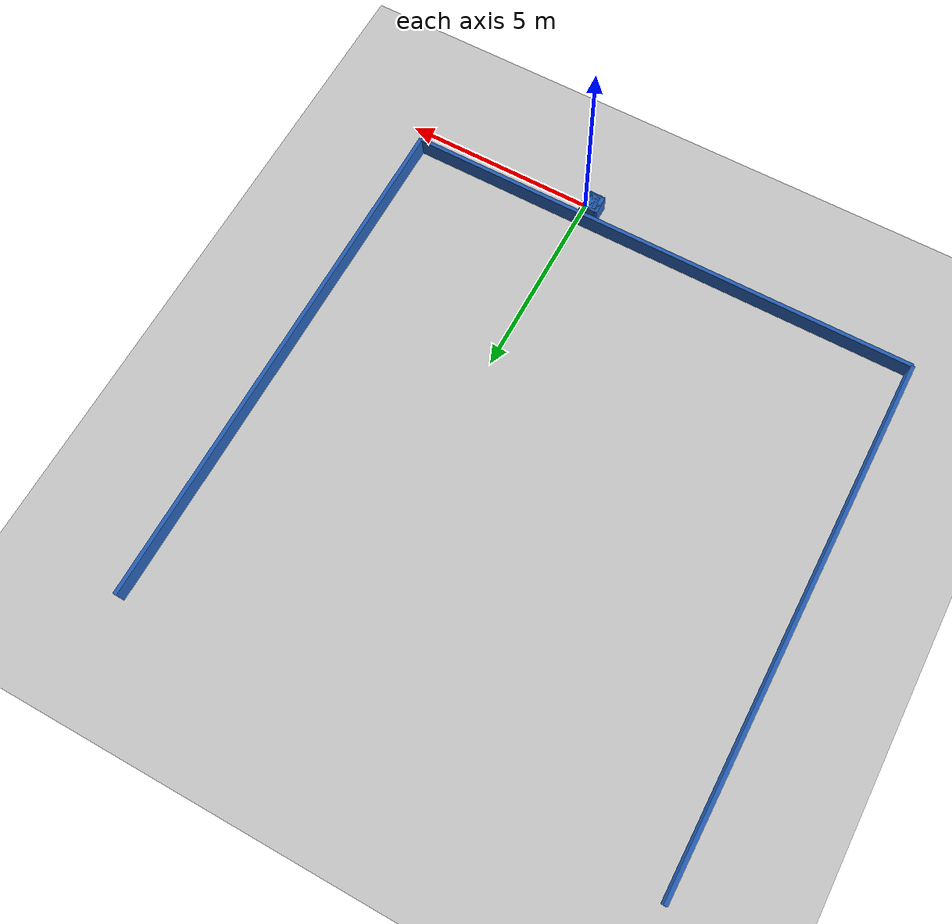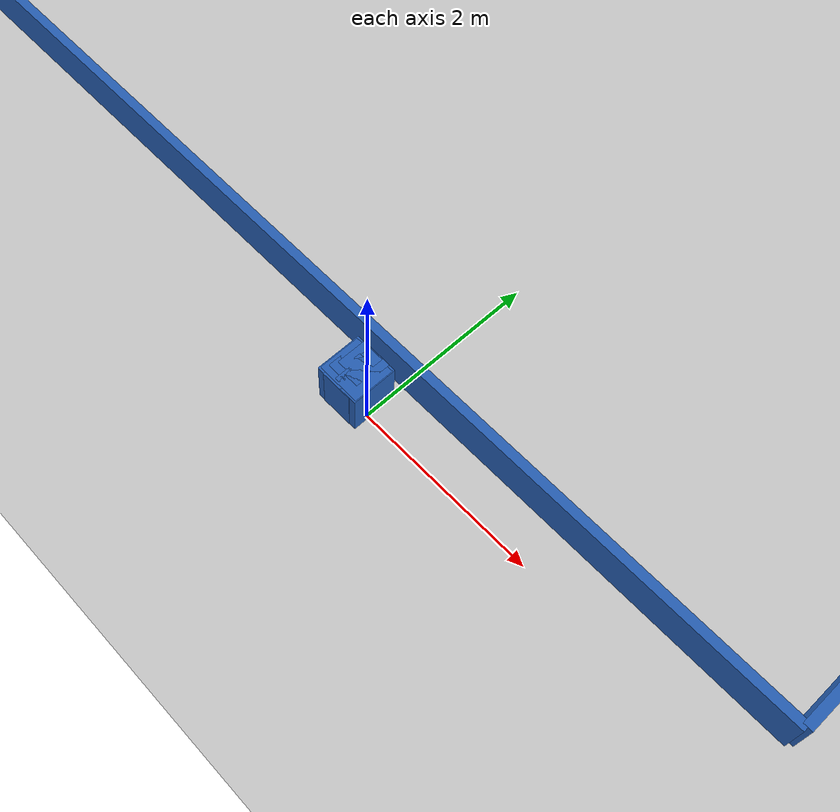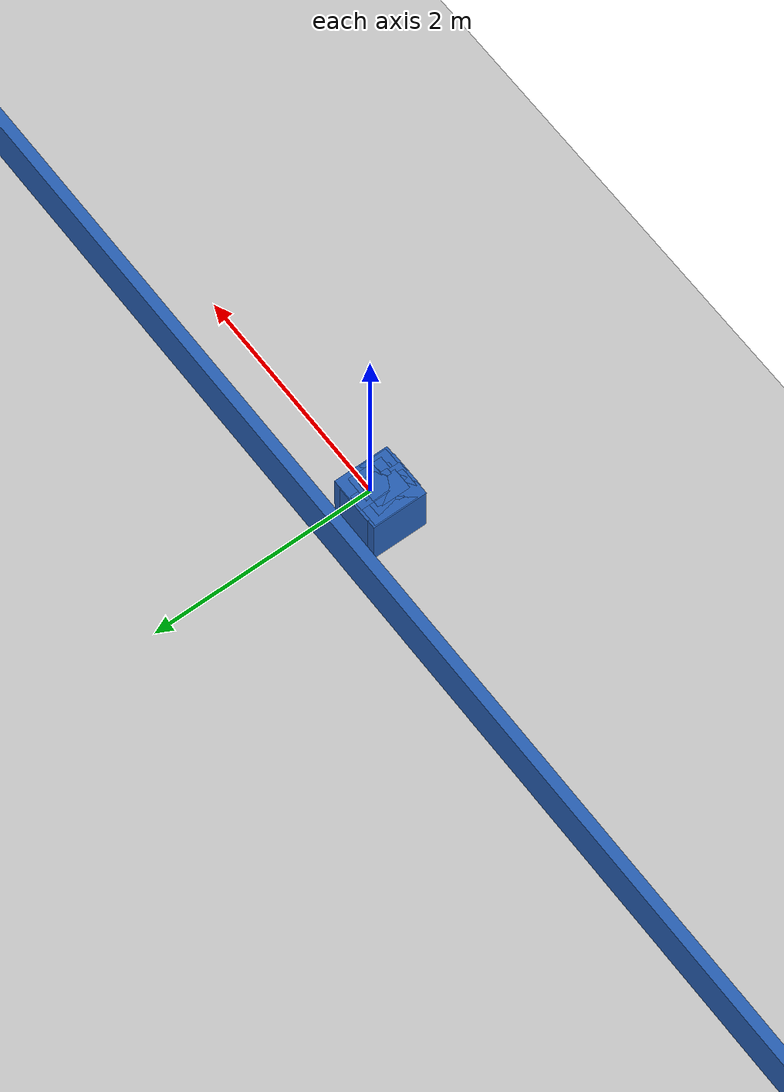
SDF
<?xml version="1.0" ?>
    <sdf version="1.5">
      <world name="default">
        <!-- A global light source -->
        <include>
          <uri>model://sun</uri>
        </include>
        <!-- A ground plane -->
        <include>
          <uri>model://ground_plane</uri>
        </include>

    <model name='libopen_space_final_T2B_96_0'>
      <static>1</static>
      <pose frame=''>-0.225000 0.075000 0.000000 0.000000 0.000000 0.000000</pose>
      <link name='link'>
        <inertial>
          <mass>1</mass>
          <inertia>
            <ixx>0.145833</ixx>
            <ixy>0</ixy>
            <ixz>0</ixz>
            <iyy>0.145833</iyy>
            <iyz>0</iyz>
            <izz>0.125</izz>
          </inertia>
        </inertial>
        <collision name='collision'>
          <geometry>
            <box>
              <size>0.20 0.27 1</size>
            </box>
          </geometry>
          <max_contacts>10</max_contacts>
          <surface>
            <contact>
              <ode/>
            </contact>
            <bounce/>
            <friction>
              <torsional>
                <ode/>
              </torsional>
              <ode/>
            </friction>
          </surface>
        </collision>
        <visual name='visual'>
          <geometry>
            <box>
              <size>0.20 0.27 1</size>
            </box>
          </geometry>
	    <material>
              <ambient>0.152000 0.379000 0.720000 1</ambient>
	      <diffuse>0.152000 0.379000 0.720000 1</diffuse>
          </material>
          <material>
            <script>
              <name>Gazebo/Grey</name>
              <uri>file://media/materials/scripts/gazebo.material</uri>
            </script>
          </material>
        </visual>
        <self_collide>0</self_collide>
        <kinematic>0</kinematic>
        <gravity>1</gravity>
      </link>
      <plugin name='libopen_space_final_T2B_96_0' filename='libopen_space_final_T2B_96_0.so'/>
    </model>

    <model name='libopen_space_final_T2B_90_7'>
      <static>1</static>
      <pose frame=''>-0.225000 0.075000 0.000000 0.000000 0.000000 0.000000</pose>
      <link name='link'>
        <inertial>
          <mass>1</mass>
          <inertia>
            <ixx>0.145833</ixx>
            <ixy>0</ixy>
            <ixz>0</ixz>
            <iyy>0.145833</iyy>
            <iyz>0</iyz>
            <izz>0.125</izz>
          </inertia>
        </inertial>
        <collision name='collision'>
          <geometry>
            <box>
              <size>0.35 0.14 1</size>
            </box>
          </geometry>
          <max_contacts>10</max_contacts>
          <surface>
            <contact>
              <ode/>
            </contact>
            <bounce/>
            <friction>
              <torsional>
                <ode/>
              </torsional>
              <ode/>
            </friction>
          </surface>
        </collision>
        <visual name='visual'>
          <geometry>
            <box>
              <size>0.35 0.14 1</size>
            </box>
          </geometry>
	    <material>
              <ambient>0.152000 0.379000 0.720000 1</ambient>
	      <diffuse>0.152000 0.379000 0.720000 1</diffuse>
          </material>
          <material>
            <script>
              <name>Gazebo/Grey</name>
              <uri>file://media/materials/scripts/gazebo.material</uri>
            </script>
          </material>
        </visual>
        <self_collide>0</self_collide>
        <kinematic>0</kinematic>
        <gravity>1</gravity>
      </link>
      <plugin name='libopen_space_final_T2B_90_7' filename='libopen_space_final_T2B_90_7.so'/>
    </model>

    <model name='libopen_space_final_T2B_141_33'>
      <static>1</static>
      <pose frame=''>-0.225000 0.075000 0.000000 0.000000 0.000000 0.000000</pose>
      <link name='link'>
        <inertial>
          <mass>1</mass>
          <inertia>
            <ixx>0.145833</ixx>
            <ixy>0</ixy>
            <ixz>0</ixz>
            <iyy>0.145833</iyy>
            <iyz>0</iyz>
            <izz>0.125</izz>
          </inertia>
        </inertial>
        <collision name='collision'>
          <geometry>
            <box>
              <size>0.26 0.23 1</size>
            </box>
          </geometry>
          <max_contacts>10</max_contacts>
          <surface>
            <contact>
              <ode/>
            </contact>
            <bounce/>
            <friction>
              <torsional>
                <ode/>
              </torsional>
              <ode/>
            </friction>
          </surface>
        </collision>
        <visual name='visual'>
          <geometry>
            <box>
              <size>0.26 0.23 1</size>
            </box>
          </geometry>
	    <material>
              <ambient>0.152000 0.379000 0.720000 1</ambient>
	      <diffuse>0.152000 0.379000 0.720000 1</diffuse>
          </material>
          <material>
            <script>
              <name>Gazebo/Grey</name>
              <uri>file://media/materials/scripts/gazebo.material</uri>
            </script>
          </material>
        </visual>
        <self_collide>0</self_collide>
        <kinematic>0</kinematic>
        <gravity>1</gravity>
      </link>
      <plugin name='libopen_space_final_T2B_141_33' filename='libopen_space_final_T2B_141_33.so'/>
    </model>

    <model name='libopen_space_final_T2B_118_50'>
      <static>1</static>
      <pose frame=''>-0.225000 0.075000 0.000000 0.000000 0.000000 0.000000</pose>
      <link name='link'>
        <inertial>
          <mass>1</mass>
          <inertia>
            <ixx>0.145833</ixx>
            <ixy>0</ixy>
            <ixz>0</ixz>
            <iyy>0.145833</iyy>
            <iyz>0</iyz>
            <izz>0.125</izz>
          </inertia>
        </inertial>
        <collision name='collision'>
          <geometry>
            <box>
              <size>0.49 0.49 1</size>
            </box>
          </geometry>
          <max_contacts>10</max_contacts>
          <surface>
            <contact>
              <ode/>
            </contact>
            <bounce/>
            <friction>
              <torsional>
                <ode/>
              </torsional>
              <ode/>
            </friction>
          </surface>
        </collision>
        <visual name='visual'>
          <geometry>
            <box>
              <size>0.49 0.49 1</size>
            </box>
          </geometry>
	    <material>
              <ambient>0.152000 0.379000 0.720000 1</ambient>
	      <diffuse>0.152000 0.379000 0.720000 1</diffuse>
          </material>
          <material>
            <script>
              <name>Gazebo/Grey</name>
              <uri>file://media/materials/scripts/gazebo.material</uri>
            </script>
          </material>
        </visual>
        <self_collide>0</self_collide>
        <kinematic>0</kinematic>
        <gravity>1</gravity>
      </link>
      <plugin name='libopen_space_final_T2B_118_50' filename='libopen_space_final_T2B_118_50.so'/>
    </model>

    <model name='libopen_space_final_T2B_106_71'>
      <static>1</static>
      <pose frame=''>-0.225000 0.075000 0.000000 0.000000 0.000000 0.000000</pose>
      <link name='link'>
        <inertial>
          <mass>1</mass>
          <inertia>
            <ixx>0.145833</ixx>
            <ixy>0</ixy>
            <ixz>0</ixz>
            <iyy>0.145833</iyy>
            <iyz>0</iyz>
            <izz>0.125</izz>
          </inertia>
        </inertial>
        <collision name='collision'>
          <geometry>
            <box>
              <size>0.40 0.31 1</size>
            </box>
          </geometry>
          <max_contacts>10</max_contacts>
          <surface>
            <contact>
              <ode/>
            </contact>
            <bounce/>
            <friction>
              <torsional>
                <ode/>
              </torsional>
              <ode/>
            </friction>
          </surface>
        </collision>
        <visual name='visual'>
          <geometry>
            <box>
              <size>0.40 0.31 1</size>
            </box>
          </geometry>
	    <material>
              <ambient>0.152000 0.379000 0.720000 1</ambient>
	      <diffuse>0.152000 0.379000 0.720000 1</diffuse>
          </material>
          <material>
            <script>
              <name>Gazebo/Grey</name>
              <uri>file://media/materials/scripts/gazebo.material</uri>
            </script>
          </material>
        </visual>
        <self_collide>0</self_collide>
        <kinematic>0</kinematic>
        <gravity>1</gravity>
      </link>
      <plugin name='libopen_space_final_T2B_106_71' filename='libopen_space_final_T2B_106_71.so'/>
    </model>

    <model name='libopen_space_final_T2B_115_24'>
      <static>1</static>
      <pose frame=''>-0.225000 0.075000 0.000000 0.000000 0.000000 0.000000</pose>
      <link name='link'>
        <inertial>
          <mass>1</mass>
          <inertia>
            <ixx>0.145833</ixx>
            <ixy>0</ixy>
            <ixz>0</ixz>
            <iyy>0.145833</iyy>
            <iyz>0</iyz>
            <izz>0.125</izz>
          </inertia>
        </inertial>
        <collision name='collision'>
          <geometry>
            <box>
              <size>0.17 0.48 1</size>
            </box>
          </geometry>
          <max_contacts>10</max_contacts>
          <surface>
            <contact>
              <ode/>
            </contact>
            <bounce/>
            <friction>
              <torsional>
                <ode/>
              </torsional>
              <ode/>
            </friction>
          </surface>
        </collision>
        <visual name='visual'>
          <geometry>
            <box>
              <size>0.17 0.48 1</size>
            </box>
          </geometry>
	    <material>
              <ambient>0.152000 0.379000 0.720000 1</ambient>
	      <diffuse>0.152000 0.379000 0.720000 1</diffuse>
          </material>
          <material>
            <script>
              <name>Gazebo/Grey</name>
              <uri>file://media/materials/scripts/gazebo.material</uri>
            </script>
          </material>
        </visual>
        <self_collide>0</self_collide>
        <kinematic>0</kinematic>
        <gravity>1</gravity>
      </link>
      <plugin name='libopen_space_final_T2B_115_24' filename='libopen_space_final_T2B_115_24.so'/>
    </model>

    <model name='libopen_space_final_T2B_96_80'>
      <static>1</static>
      <pose frame=''>-0.225000 0.075000 0.000000 0.000000 0.000000 0.000000</pose>
      <link name='link'>
        <inertial>
          <mass>1</mass>
          <inertia>
            <ixx>0.145833</ixx>
            <ixy>0</ixy>
            <ixz>0</ixz>
            <iyy>0.145833</iyy>
            <iyz>0</iyz>
            <izz>0.125</izz>
          </inertia>
        </inertial>
        <collision name='collision'>
          <geometry>
            <box>
              <size>0.47 0.45 1</size>
            </box>
          </geometry>
          <max_contacts>10</max_contacts>
          <surface>
            <contact>
              <ode/>
            </contact>
            <bounce/>
            <friction>
              <torsional>
                <ode/>
              </torsional>
              <ode/>
            </friction>
          </surface>
        </collision>
        <visual name='visual'>
          <geometry>
            <box>
              <size>0.47 0.45 1</size>
            </box>
          </geometry>
	    <material>
              <ambient>0.152000 0.379000 0.720000 1</ambient>
	      <diffuse>0.152000 0.379000 0.720000 1</diffuse>
          </material>
          <material>
            <script>
              <name>Gazebo/Grey</name>
              <uri>file://media/materials/scripts/gazebo.material</uri>
            </script>
          </material>
        </visual>
        <self_collide>0</self_collide>
        <kinematic>0</kinematic>
        <gravity>1</gravity>
      </link>
      <plugin name='libopen_space_final_T2B_96_80' filename='libopen_space_final_T2B_96_80.so'/>
    </model>

    <model name='libopen_space_final_T2B_140_77'>
      <static>1</static>
      <pose frame=''>-0.225000 0.075000 0.000000 0.000000 0.000000 0.000000</pose>
      <link name='link'>
        <inertial>
          <mass>1</mass>
          <inertia>
            <ixx>0.145833</ixx>
            <ixy>0</ixy>
            <ixz>0</ixz>
            <iyy>0.145833</iyy>
            <iyz>0</iyz>
            <izz>0.125</izz>
          </inertia>
        </inertial>
        <collision name='collision'>
          <geometry>
            <box>
              <size>0.12 0.41 1</size>
            </box>
          </geometry>
          <max_contacts>10</max_contacts>
          <surface>
            <contact>
              <ode/>
            </contact>
            <bounce/>
            <friction>
              <torsional>
                <ode/>
              </torsional>
              <ode/>
            </friction>
          </surface>
        </collision>
        <visual name='visual'>
          <geometry>
            <box>
              <size>0.12 0.41 1</size>
            </box>
          </geometry>
	    <material>
              <ambient>0.152000 0.379000 0.720000 1</ambient>
	      <diffuse>0.152000 0.379000 0.720000 1</diffuse>
          </material>
          <material>
            <script>
              <name>Gazebo/Grey</name>
              <uri>file://media/materials/scripts/gazebo.material</uri>
            </script>
          </material>
        </visual>
        <self_collide>0</self_collide>
        <kinematic>0</kinematic>
        <gravity>1</gravity>
      </link>
      <plugin name='libopen_space_final_T2B_140_77' filename='libopen_space_final_T2B_140_77.so'/>
    </model>

    <model name='libopen_space_final_T2B_57_87'>
      <static>1</static>
      <pose frame=''>-0.225000 0.075000 0.000000 0.000000 0.000000 0.000000</pose>
      <link name='link'>
        <inertial>
          <mass>1</mass>
          <inertia>
            <ixx>0.145833</ixx>
            <ixy>0</ixy>
            <ixz>0</ixz>
            <iyy>0.145833</iyy>
            <iyz>0</iyz>
            <izz>0.125</izz>
          </inertia>
        </inertial>
        <collision name='collision'>
          <geometry>
            <box>
              <size>0.14 0.46 1</size>
            </box>
          </geometry>
          <max_contacts>10</max_contacts>
          <surface>
            <contact>
              <ode/>
            </contact>
            <bounce/>
            <friction>
              <torsional>
                <ode/>
              </torsional>
              <ode/>
            </friction>
          </surface>
        </collision>
        <visual name='visual'>
          <geometry>
            <box>
              <size>0.14 0.46 1</size>
            </box>
          </geometry>
	    <material>
              <ambient>0.152000 0.379000 0.720000 1</ambient>
	      <diffuse>0.152000 0.379000 0.720000 1</diffuse>
          </material>
          <material>
            <script>
              <name>Gazebo/Grey</name>
              <uri>file://media/materials/scripts/gazebo.material</uri>
            </script>
          </material>
        </visual>
        <self_collide>0</self_collide>
        <kinematic>0</kinematic>
        <gravity>1</gravity>
      </link>
      <plugin name='libopen_space_final_T2B_57_87' filename='libopen_space_final_T2B_57_87.so'/>
    </model>

    <model name='libopen_space_final_T2B_116_74'>
      <static>1</static>
      <pose frame=''>-0.225000 0.075000 0.000000 0.000000 0.000000 0.000000</pose>
      <link name='link'>
        <inertial>
          <mass>1</mass>
          <inertia>
            <ixx>0.145833</ixx>
            <ixy>0</ixy>
            <ixz>0</ixz>
            <iyy>0.145833</iyy>
            <iyz>0</iyz>
            <izz>0.125</izz>
          </inertia>
        </inertial>
        <collision name='collision'>
          <geometry>
            <box>
              <size>0.34 0.50 1</size>
            </box>
          </geometry>
          <max_contacts>10</max_contacts>
          <surface>
            <contact>
              <ode/>
            </contact>
            <bounce/>
            <friction>
              <torsional>
                <ode/>
              </torsional>
              <ode/>
            </friction>
          </surface>
        </collision>
        <visual name='visual'>
          <geometry>
            <box>
              <size>0.34 0.50 1</size>
            </box>
          </geometry>
	    <material>
              <ambient>0.152000 0.379000 0.720000 1</ambient>
	      <diffuse>0.152000 0.379000 0.720000 1</diffuse>
          </material>
          <material>
            <script>
              <name>Gazebo/Grey</name>
              <uri>file://media/materials/scripts/gazebo.material</uri>
            </script>
          </material>
        </visual>
        <self_collide>0</self_collide>
        <kinematic>0</kinematic>
        <gravity>1</gravity>
      </link>
      <plugin name='libopen_space_final_T2B_116_74' filename='libopen_space_final_T2B_116_74.so'/>
    </model>

    <model name='libopen_space_final_T2B_80_26'>
      <static>1</static>
      <pose frame=''>-0.225000 0.075000 0.000000 0.000000 0.000000 0.000000</pose>
      <link name='link'>
        <inertial>
          <mass>1</mass>
          <inertia>
            <ixx>0.145833</ixx>
            <ixy>0</ixy>
            <ixz>0</ixz>
            <iyy>0.145833</iyy>
            <iyz>0</iyz>
            <izz>0.125</izz>
          </inertia>
        </inertial>
        <collision name='collision'>
          <geometry>
            <box>
              <size>0.27 0.35 1</size>
            </box>
          </geometry>
          <max_contacts>10</max_contacts>
          <surface>
            <contact>
              <ode/>
            </contact>
            <bounce/>
            <friction>
              <torsional>
                <ode/>
              </torsional>
              <ode/>
            </friction>
          </surface>
        </collision>
        <visual name='visual'>
          <geometry>
            <box>
              <size>0.27 0.35 1</size>
            </box>
          </geometry>
	    <material>
              <ambient>0.152000 0.379000 0.720000 1</ambient>
	      <diffuse>0.152000 0.379000 0.720000 1</diffuse>
          </material>
          <material>
            <script>
              <name>Gazebo/Grey</name>
              <uri>file://media/materials/scripts/gazebo.material</uri>
            </script>
          </material>
        </visual>
        <self_collide>0</self_collide>
        <kinematic>0</kinematic>
        <gravity>1</gravity>
      </link>
      <plugin name='libopen_space_final_T2B_80_26' filename='libopen_space_final_T2B_80_26.so'/>
    </model>

        <model name='bottom_wall'>
          <static>1</static>
          <pose frame=''>-2.25 0.5 0.000000 0.000000 0.000000 1.57079632</pose>
          <link name='link'>
            <inertial>
            <mass>1</mass>
            <inertia>
              <ixx>0.145833</ixx>
              <ixy>0</ixy>
              <ixz>0</ixz>
              <iyy>0.145833</iyy>
              <iyz>0</iyz>
              <izz>0.125</izz>
            </inertia>
            </inertial>
            <collision name='collision'>
            <geometry>
              <box>
              <size>0.1 13.5 1</size>
              </box>
            </geometry>
            <max_contacts>10</max_contacts>
            <surface>
              <contact>
              <ode/>
              </contact>
              <bounce/>
              <friction>
              <torsional>
                <ode/>
              </torsional>
              <ode/>
              </friction>
            </surface>
            </collision>
            <visual name='visual'>
            <geometry>
              <box>
              <size>0.1 13.5 1</size>
              </box>
            </geometry>
            <material>
              <ambient>0.152000 0.379000 0.720000 1</ambient>
            <diffuse>0.152000 0.379000 0.720000 1</diffuse>
            </material>
            <material>
              <script>
              <name>Gazebo/Grey</name>
              <uri>file://media/materials/scripts/gazebo.material</uri>
              </script>
            </material>
            </visual>
            <self_collide>0</self_collide>
            <kinematic>0</kinematic>
            <gravity>1</gravity>
          </link>
        </model>

        <model name='left_wall'>
          <static>1</static>
          <pose frame=''>-9 7.25 0.000000 0.000000 0.000000 0.000000</pose>
          <link name='link'>
            <inertial>
            <mass>1</mass>
            <inertia>
              <ixx>0.145833</ixx>
              <ixy>0</ixy>
              <ixz>0</ixz>
              <iyy>0.145833</iyy>
              <iyz>0</iyz>
              <izz>0.125</izz>
            </inertia>
            </inertial>
            <collision name='collision'>
            <geometry>
              <box>
              <size>0.1 13.5 1</size>
              </box>
            </geometry>
            <max_contacts>10</max_contacts>
            <surface>
              <contact>
              <ode/>
              </contact>
              <bounce/>
              <friction>
              <torsional>
                <ode/>
              </torsional>
              <ode/>
              </friction>
            </surface>
            </collision>
            <visual name='visual'>
            <geometry>
              <box>
              <size>0.1 13.5 1</size>
              </box>
            </geometry>
            <material>
              <ambient>0.152000 0.379000 0.720000 1</ambient>
            <diffuse>0.152000 0.379000 0.720000 1</diffuse>
            </material>
            <material>
              <script>
              <name>Gazebo/Grey</name>
              <uri>file://media/materials/scripts/gazebo.material</uri>
              </script>
            </material>
            </visual>
            <self_collide>0</self_collide>
            <kinematic>0</kinematic>
            <gravity>1</gravity>
          </link>
        </model>

        <model name='right_wall'>
          <static>1</static>
          <pose frame=''>4.5 7.25 0.000000 0.000000 0.000000 0.000000</pose>
          <link name='link'>
            <inertial>
            <mass>1</mass>
            <inertia>
              <ixx>0.145833</ixx>
              <ixy>0</ixy>
              <ixz>0</ixz>
              <iyy>0.145833</iyy>
              <iyz>0</iyz>
              <izz>0.125</izz>
            </inertia>
            </inertial>
            <collision name='collision'>
            <geometry>
              <box>
              <size>0.1 13.5 1</size>
              </box>
            </geometry>
            <max_contacts>10</max_contacts>
            <surface>
              <contact>
              <ode/>
              </contact>
              <bounce/>
              <friction>
              <torsional>
                <ode/>
              </torsional>
              <ode/>
              </friction>
            </surface>
            </collision>
            <visual name='visual'>
            <geometry>
              <box>
              <size>0.1 13.5 1</size>
              </box>
            </geometry>
            <material>
              <ambient>0.152000 0.379000 0.720000 1</ambient>
            <diffuse>0.152000 0.379000 0.720000 1</diffuse>
            </material>
            <material>
              <script>
              <name>Gazebo/Grey</name>
              <uri>file://media/materials/scripts/gazebo.material</uri>
              </script>
            </material>
            </visual>
            <self_collide>0</self_collide>
            <kinematic>0</kinematic>
            <gravity>1</gravity>
          </link>
        </model>

      </world>
    </sdf>"
